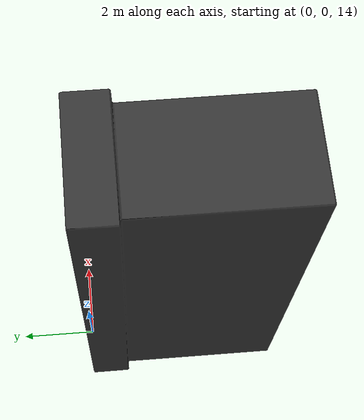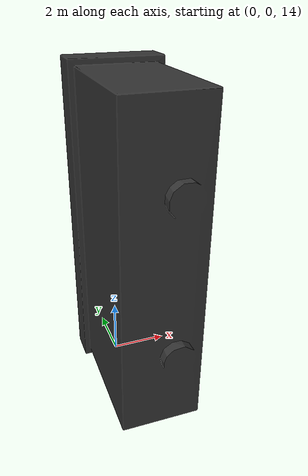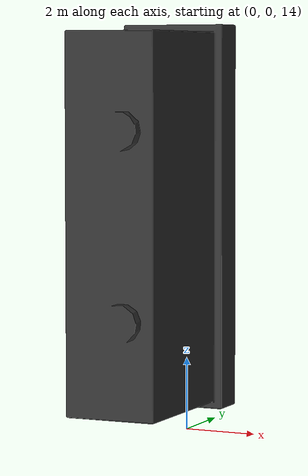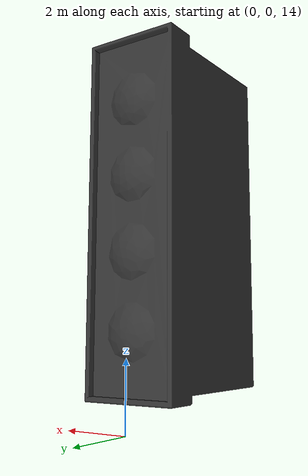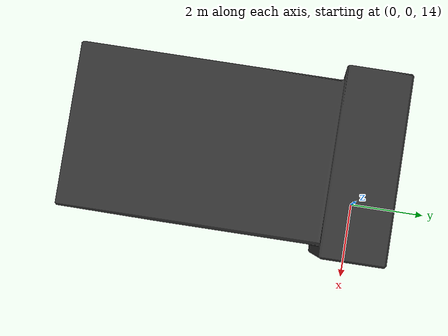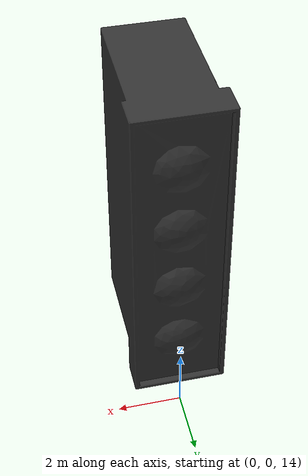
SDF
<sdf version='1.10'>
<model name="camera">
      <static>true</static>
      <pose>0 0 20 0 1.57 0</pose>
      <link name="link">
        <pose>0 0 0 0 0 0</pose>
        <inertial>
          <mass>0.1</mass>
          <inertia>
            <ixx>0.000166667</ixx>
            <iyy>0.000166667</iyy>
            <izz>0.000166667</izz>
          </inertia>
        </inertial>
        <collision name="collision">
          <geometry>
            <mesh>
            <scale>1 1 1</scale>
            <uri>model://camera/meshes/camera.stl</uri>
          </mesh>
          </geometry>
        </collision>
        <visual name="visual">
          <geometry>
            <mesh>
            <scale>1 1 1</scale>
            <uri>model://camera/meshes/camera.dae</uri>
          </mesh>
          </geometry>
        </visual>
       <sensor type="camera" name="camera_sensor">
          <update_rate>30.0</update_rate>
          <pose>0 0 0 0 0 0</pose>
          <topic>/camera</topic>
            <camera name="robot_camera">
              <horizontal_fov>1.8</horizontal_fov>
              <image>
                <width>640</width>
                <height>480</height>
                <format>R8G8B8</format>
              </image>
              <clip>
               <near>0.02</near>
               <far>300</far>
              </clip>
              <noise>
                <type>gaussian</type>
                <mean>0.0</mean>
                <stddev>0.007</stddev>
              </noise>
            </camera>
          </sensor>
      </link>
    </model>

  </sdf>
